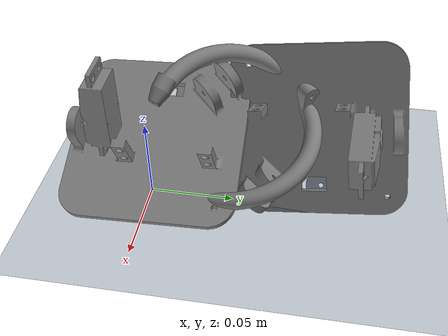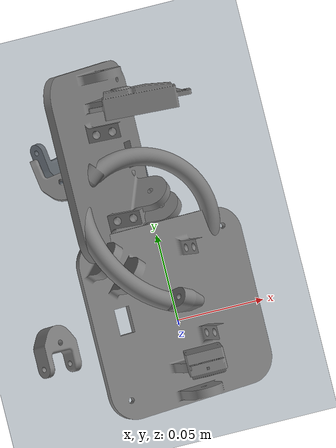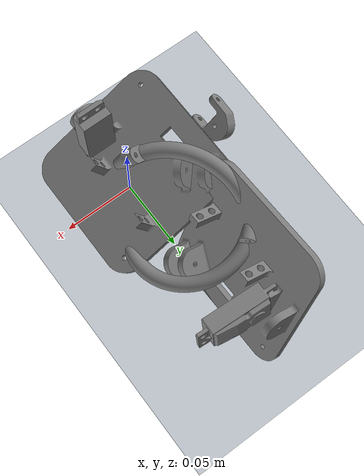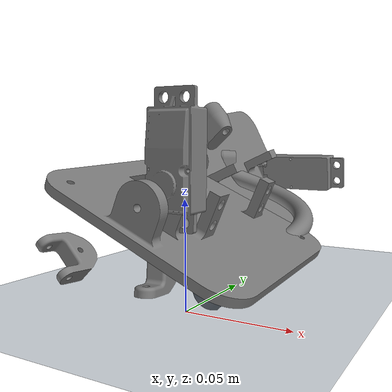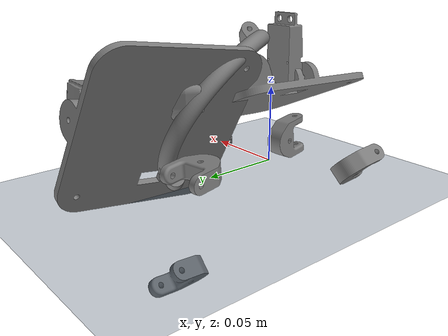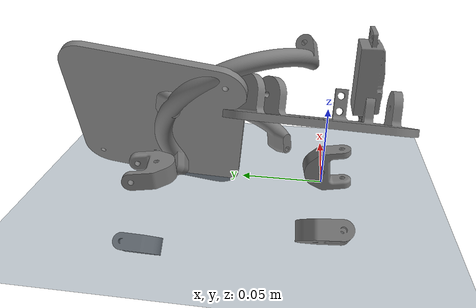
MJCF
<?xml version="1.0" ?>
<!-- Scene for testing the fused module -->
<mujoco model="fused-module-scene">
  <include file="fused_module.xml"/>

  <visual>
    <headlight diffuse="0.6 0.6 0.6" ambient="0.3 0.3 0.3" specular="0 0 0"/>
    <rgba haze="0.15 0.25 0.35 1"/>
    <global azimuth="120" elevation="-20"/>
  </visual>

  <statistic center="0 0 0.1" extent="0.5"/>

  <asset>
    <texture type="skybox" builtin="gradient" rgb1="0.3 0.5 0.7" rgb2="0 0 0" width="512" height="3072"/>
    <texture type="2d" name="groundplane" builtin="checker" mark="edge" rgb1="0.2 0.3 0.4" rgb2="0.1 0.2 0.3" markrgb="0.8 0.8 0.8" width="300" height="300"/>
    <material name="groundplane" texture="groundplane" texuniform="true" texrepeat="5 5" reflectance="0.2"/>
  </asset>

  <worldbody>
    <light pos="0 0 1.5" dir="0 0 -1" directional="true"/>
    <geom name="floor" size="0 0 0.05" type="plane" material="groundplane"/>
  </worldbody>
</mujoco>

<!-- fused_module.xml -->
<!-- Auto-generated fused module: all parts in a single rigid body -->
<mujoco model="fused-module">
  <compiler angle="radian" meshdir="assets" autolimits="true"/>
  <default>
    <default class="fused-module">
      <joint damping="0.01" frictionloss="0.01" armature="0.002"/>
      <default class="visual">
        <geom type="mesh" contype="0" conaffinity="0" group="2"/>
      </default>
      <default class="collision">
        <geom group="3"/>
      </default>
    </default>
  </default>
  <worldbody>
    <!-- Single fused body: all servo+fusioncomponent parts rigidly fixed -->
    <body name="fused_module" pos="0 0 0.05" quat="1 0 0 0" childclass="fused-module">
      <freejoint name="fused_module_freejoint"/>
      <inertial pos="0 0 0" mass="1.0500" fullinertia="0.001 0.001 0.001 0 0 0"/>

      <!-- servo_motor_35kg_motor_v1 -->
      <geom type="mesh" class="visual" pos="0.0087362384 0.014000003 0.017475516" quat="0 0.71174413 0 0.70243882" mesh="servo_motor_35kg_motor_v1"/>
      <!-- servo_motor_35kg_motor_v1 -->
      <geom type="mesh" class="collision" pos="0.0087362384 0.014000003 0.017475516" quat="0 0.71174413 0 0.70243882" mesh="servo_motor_35kg_motor_v1"/>
      <!-- fusioncomponent -->
      <geom type="mesh" class="visual" pos="0.0010113123 0.007041815 -0.006140756" quat="0.36960599 0.60461793 0.58462025 0.39502877" mesh="fusioncomponent"/>
      <!-- fusioncomponent -->
      <geom type="mesh" class="collision" pos="0.0010113123 0.007041815 -0.006140756" quat="0.36960599 0.60461793 0.58462025 0.39502877" mesh="fusioncomponent"/>
      <!-- fusioncomponent__2 -->
      <geom type="mesh" class="visual" pos="-0.0365576 0.017133435 -0.00064678064" quat="-2.0509837e-08 -5.7787091e-07 0.035469741 0.99937075" mesh="fusioncomponent__2"/>
      <!-- fusioncomponent__2 -->
      <geom type="mesh" class="collision" pos="-0.0365576 0.017133435 -0.00064678064" quat="-2.0509837e-08 -5.7787091e-07 0.035469741 0.99937075" mesh="fusioncomponent__2"/>
      <!-- danda_v4 -->
      <geom type="mesh" class="visual" pos="-0.0049631274 0.05877214 0.010004037" quat="0.28862463 -0.31023058 -0.61746993 0.66270936" mesh="danda_v4"/>
      <!-- danda_v4 -->
      <geom type="mesh" class="collision" pos="-0.0049631274 0.05877214 0.010004037" quat="0.28862463 -0.31023058 -0.61746993 0.66270936" mesh="danda_v4"/>
      <!-- fusioncomponent__2 -->
      <geom type="mesh" class="visual" pos="0.031589195 0.017103494 -0.032658373" quat="-0.029703132 0.38152824 0.071709613 0.92109264" mesh="fusioncomponent__2"/>
      <!-- fusioncomponent__2 -->
      <geom type="mesh" class="collision" pos="0.031589195 0.017103494 -0.032658373" quat="-0.029703132 0.38152824 0.071709613 0.92109264" mesh="fusioncomponent__2"/>
      <!-- danda_support_v5 -->
      <geom type="mesh" class="visual" pos="-0.017560204 0.047950194 -0.015886559" quat="0.41671574 0.63648596 0.6353989 0.13229454" mesh="danda_support_v5"/>
      <!-- danda_support_v5 -->
      <geom type="mesh" class="collision" pos="-0.017560204 0.047950194 -0.015886559" quat="0.41671574 0.63648596 0.6353989 0.13229454" mesh="danda_support_v5"/>
      <!-- fusioncomponent__2 -->
      <geom type="mesh" class="visual" pos="-0.042190954 0.08430301 0.026233933" quat="0.91973002 -0.059853439 0.38356698 0.058229047" mesh="fusioncomponent__2"/>
      <!-- fusioncomponent__2 -->
      <geom type="mesh" class="collision" pos="-0.042190954 0.08430301 0.026233933" quat="0.91973002 -0.059853439 0.38356698 0.058229047" mesh="fusioncomponent__2"/>
      <!-- fusioncomponent -->
      <geom type="mesh" class="visual" pos="-0.016475858 0.097202901 -0.00409347" quat="0.67773883 0.19186599 -0.10040532 -0.70269217" mesh="fusioncomponent"/>
      <!-- fusioncomponent -->
      <geom type="mesh" class="collision" pos="-0.016475858 0.097202901 -0.00409347" quat="0.67773883 0.19186599 -0.10040532 -0.70269217" mesh="fusioncomponent"/>
      <!-- servo_motor_35kg_motor_v1 -->
      <geom type="mesh" class="visual" pos="0.0068124839 0.088041572 0.002194585" quat="0.99727345 0.06879887 0.00028438854 -0.026689114" mesh="servo_motor_35kg_motor_v1"/>
      <!-- servo_motor_35kg_motor_v1 -->
      <geom type="mesh" class="collision" pos="0.0068124839 0.088041572 0.002194585" quat="0.99727345 0.06879887 0.00028438854 -0.026689114" mesh="servo_motor_35kg_motor_v1"/>
      <!-- fusioncomponent__2 -->
      <geom type="mesh" class="visual" pos="-0.011151864 0.092118555 -0.042788866" quat="0.70350497 0.007890183 0.70490899 0.090121133" mesh="fusioncomponent__2"/>
      <!-- fusioncomponent__2 -->
      <geom type="mesh" class="collision" pos="-0.011151864 0.092118555 -0.042788866" quat="0.70350497 0.007890183 0.70490899 0.090121133" mesh="fusioncomponent__2"/>

    </body>
  </worldbody>
  <asset>
    <mesh name="danda_support_v5" file="danda_support_v5.stl"/>
    <mesh name="danda_v4" file="danda_v4.stl"/>
    <mesh name="fusioncomponent" file="fusioncomponent.stl"/>
    <mesh name="fusioncomponent__2" file="fusioncomponent__2.stl"/>
    <mesh name="servo_motor_35kg_motor_v1" file="servo_motor_35kg_motor_v1.stl"/>
    <!-- extra servo variant: servo_motor_35kg_motor_v1__2.stl -->
    <mesh name="servo_motor_35kg_motor_v1__2" file="servo_motor_35kg_motor_v1__2.stl"/>
    <!-- extra servo variant: servo_motor_35kg_motor_v1__3.stl -->
    <mesh name="servo_motor_35kg_motor_v1__3" file="servo_motor_35kg_motor_v1__3.stl"/>
    <!-- extra servo variant: servo_motor_35kg_motor_v1__4.stl -->
    <mesh name="servo_motor_35kg_motor_v1__4" file="servo_motor_35kg_motor_v1__4.stl"/>
    <!-- extra servo variant: servo_motor_35kg_motor_v1__5.stl -->
    <mesh name="servo_motor_35kg_motor_v1__5" file="servo_motor_35kg_motor_v1__5.stl"/>
    <!-- Materials -->
    <material name="servo_motor_35kg_motor_v1_material" rgba="0.101961 0.101961 0.101961 1"/>
    <material name="fusioncomponent_material"   rgba="0.627451 0.627451 0.627451 1"/>
    <material name="fusioncomponent__2_material" rgba="0.627451 0.627451 0.627451 1"/>
    <material name="danda_v4_material"          rgba="0.627451 0.627451 0.627451 1"/>
    <material name="danda_support_v5_material"  rgba="0.627451 0.627451 0.627451 1"/>
    <material name="default_material" rgba="0.866667 0.909804 1 1"/>
  </asset>
</mujoco>
